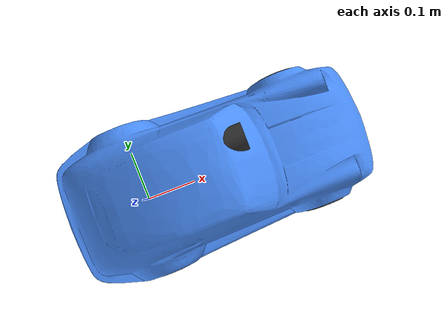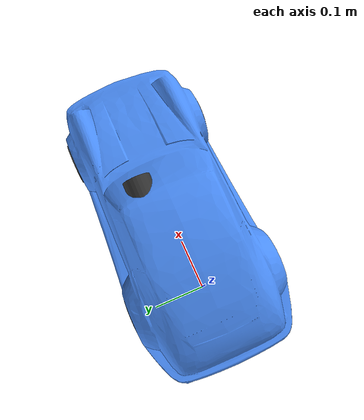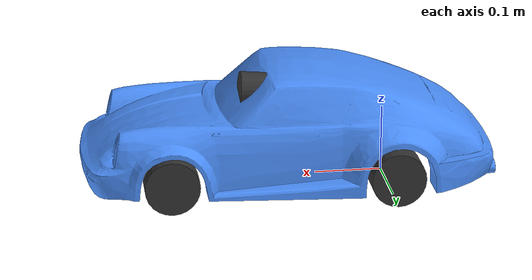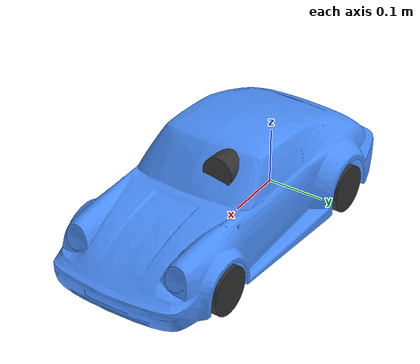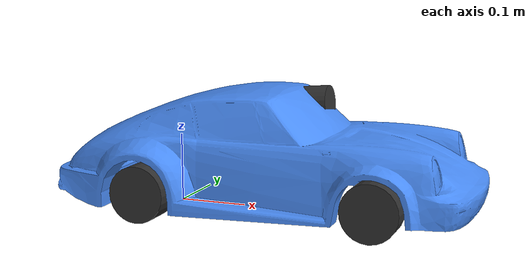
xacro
<?xml version="1.0"?>

<!-- A simple model of the racecar for rviz -->

<robot xmlns:xacro="http://www.ros.org/wiki/xacro" name="racecar">

  <xacro:property name="ground_offset" value="0.04" />
  <xacro:property name="wheel_radius" value="0.04" />
  <xacro:property name="laser_distance_from_base_link_x" value="0.35" />
  <xacro:property name="laser_height" value="0.05" />
  <xacro:property name="laser_radius" value="0.026" />
  <xacro:property name="camera_distance_from_base_link_x" value="0.194" />
  <xacro:property name="camera_distance_from_base_link_y" value="0.04" />
  <xacro:property name="camera_distance_from_base_link_z" value="0.1108" />
  <xacro:property name="camera_height" value="0.05" />
  <xacro:property name="camera_radius" value="0.026" />
  <xacro:property name="car_name" value="ego_racecar" />

  <xacro:property name="wheelbase" value="0.326" />
  <xacro:property name="axis_back_z" value="0.0014" />
  <xacro:property name="axis_back_x" value="0.144" />
  <xacro:property name="axis_front_x" value="0.198" />
  <xacro:property name="track_front" value="0.238" />
  <xacro:property name="track_back" value="0.252" />
  <xacro:property name="wheel_length_front" value="0.035" />
  <xacro:property name="wheel_length_back" value="0.047" />

  <material name="black">
    <color rgba="0.2 0.2 0.2 1."/>
  </material>

  <material name="blue">
    <color rgba="0.3 0.57 1. 1."/>
  </material>

  <link name="${car_name}/base_link">
    <visual>
      <origin xyz="${axis_back_x} 0  ${ground_offset+axis_back_z}" rpy=" 0 0 ${pi/2}"/>
      <geometry>
        <mesh filename="package://remote_rviz/launch/911_body_paw.dae" scale="0.001 0.001 0.001"/>
      </geometry>
      <material name="blue"/>
    </visual>
  </link>

  <joint name="base_to_laser_model" type="fixed">
    <parent link="${car_name}/base_link"/>
    <child link="laser"/>
    <origin xyz="${laser_distance_from_base_link_x} 0 ${ground_offset+(laser_height/2)}"/>
  </joint>

  <link name="laser">
    <visual>
      <geometry>
        <cylinder radius="${laser_radius}" length="${laser_height}"/>
      </geometry>
      <material name="black"/>
    </visual>
  </link>

  <link name="${car_name}/camera">
    <visual>
      <geometry>
        <cylinder radius="${camera_radius}" length="${camera_height}"/>
      </geometry>
      <origin xyz="0 0 0" rpy=" 0 0 0"/>
      <material name="black"/>
    </visual>
  </link>

  <joint name="base_to_camera" type="fixed">
    <parent link="${car_name}/base_link"/>
    <child link="${car_name}/camera"/>
    <origin xyz="${camera_distance_from_base_link_x} ${camera_distance_from_base_link_y} ${ground_offset+camera_distance_from_base_link_z}" rpy=" ${-pi/2+0.087} 0 ${-pi/2}"/>
  </joint>

  <joint name="$base_to_back_left_wheel" type="fixed">
    <parent link="${car_name}/base_link"/>
    <child link="${car_name}/back_left_wheel"/>
    <origin xyz="0 ${track_back/2} ${ground_offset}"/>
  </joint>

  <link name="${car_name}/back_left_wheel">
    <visual>
      <geometry>
        <cylinder radius="${wheel_radius}" length="${wheel_length_back}"/>
      </geometry>
      <material name="black"/>
      <origin rpy="${pi/2} 0 0"/>
    </visual>
  </link>

  <joint name="base_to_back_right_wheel" type="fixed">
    <parent link="${car_name}/base_link"/>
    <child link="${car_name}/back_right_wheel"/>
    <origin xyz="0 ${-track_back/2} ${ground_offset}"/>
  </joint>

  <link name="${car_name}/back_right_wheel">
    <visual>
      <geometry>
        <cylinder radius="${wheel_radius}" length="${wheel_length_back}"/>
      </geometry>
      <material name="black"/>
      <origin rpy="${pi/2} 0 0"/>
    </visual>
  </link>

  <joint name="base_to_front_left_hinge" type="fixed">
    <parent link="${car_name}/base_link"/>
    <child link="${car_name}/front_left_hinge"/>
    <origin xyz="${wheelbase} ${track_front/2} ${ground_offset}"/>
  </joint>

  <link name="${car_name}/front_left_hinge"/>

  <joint name="front_left_hinge_to_wheel" type="continuous">
    <parent link="${car_name}/front_left_hinge"/>
    <child link="${car_name}/front_left_wheel"/>
  </joint>

  <link name="${car_name}/front_left_wheel">
    <visual>
      <geometry>
        <cylinder radius="${wheel_radius}" length="${wheel_length_front}"/>
      </geometry>
      <material name="black"/>
      <origin rpy="${pi/2} 0 0"/>
    </visual>
  </link>

  <joint name="base_to_front_right_hinge" type="fixed">
    <parent link="${car_name}/base_link"/>
    <child link="${car_name}/front_right_hinge"/>
    <origin xyz="${wheelbase} ${-track_front/2} ${ground_offset}"/>
  </joint>

  <link name="${car_name}/front_right_hinge"/>

  <joint name="front_right_hinge_to_wheel" type="continuous">
    <parent link="${car_name}/front_right_hinge"/>
    <child link="${car_name}/front_right_wheel"/>
  </joint>

  <link name="${car_name}/front_right_wheel">
    <visual>
      <geometry>
        <cylinder radius="${wheel_radius}" length="${wheel_length_front}"/>
      </geometry>
      <material name="black"/>
      <origin rpy="${pi/2} 0 0"/>
    </visual>
  </link>

</robot>
